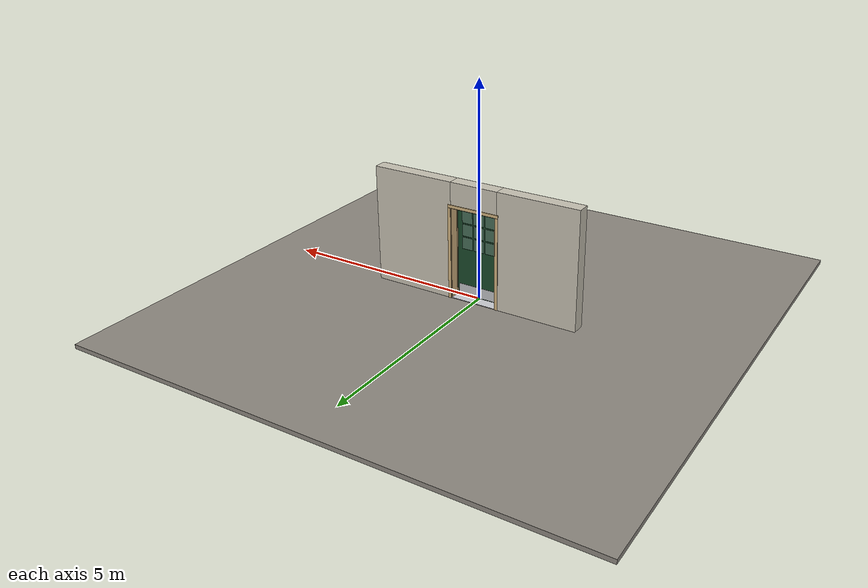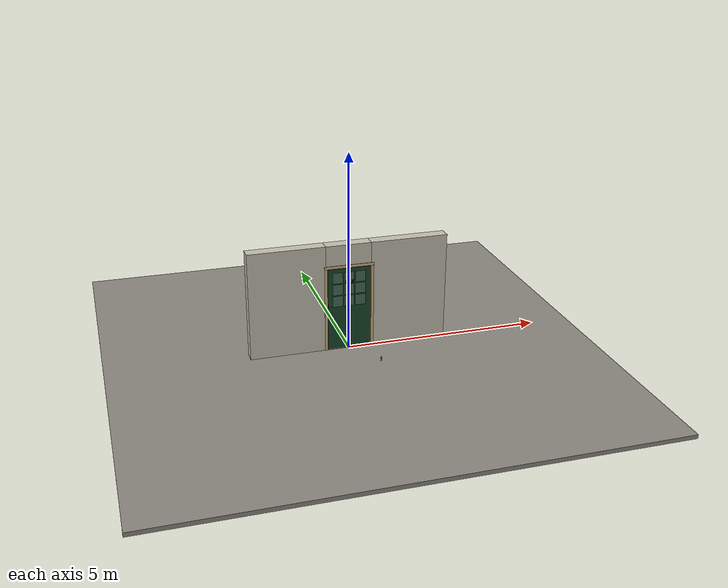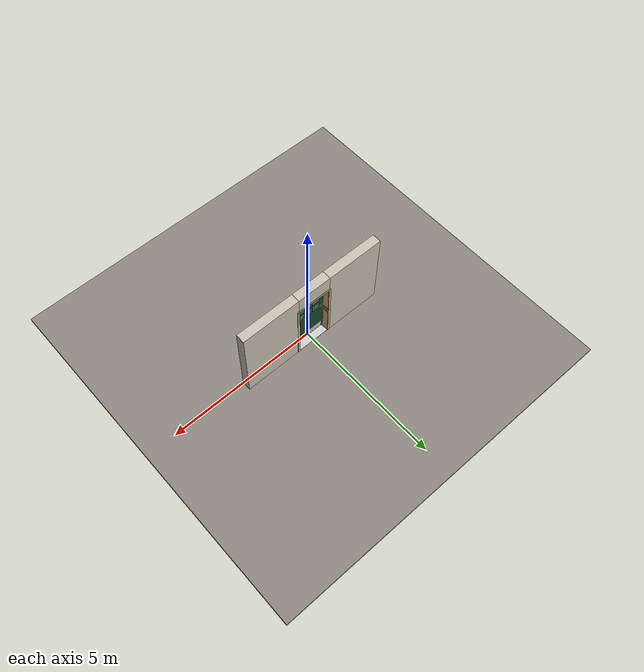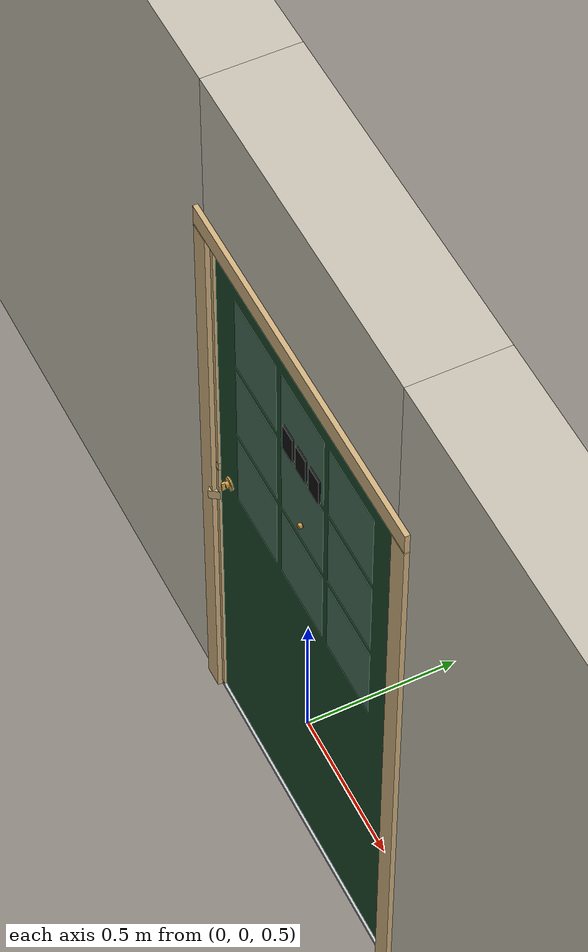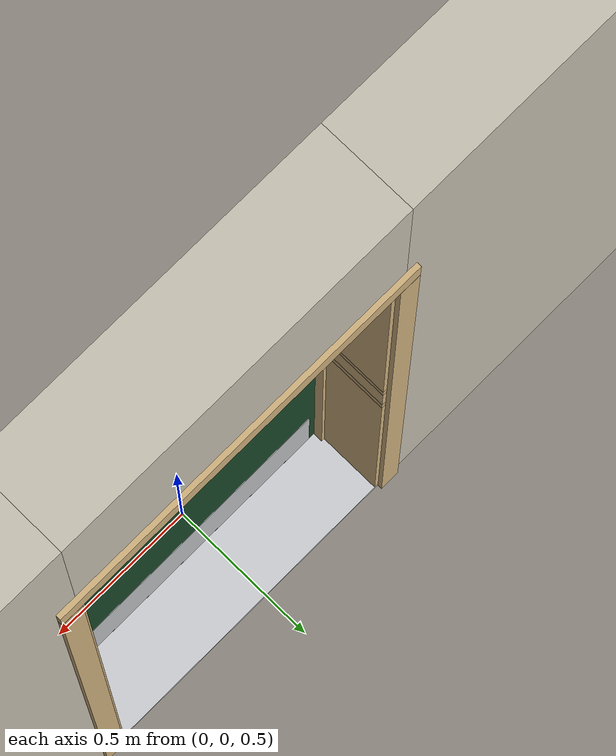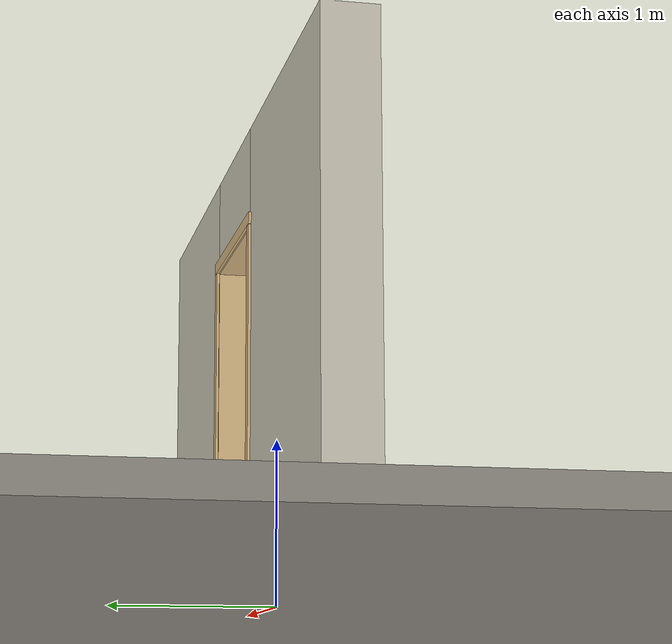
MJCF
<?xml version="1.0" ?>
<mujoco model="db0561_swing_single_full">
  <compiler angle="radian" meshdir="../../hardware" texturedir="../../textures" autolimits="true" inertiafromgeom="false"/>
  <option timestep="0.002" integrator="implicitfast" cone="elliptic" impratio="10" noslip_iterations="3">
    <flag multiccd="enable"/>
  </option>
  <size memory="16M"/>
  <default>
    <geom condim="4" solref="0.005 1" solimp="0.95 0.99 0.001"/>
    <joint solreflimit="0.005 1" solimplimit="0.95 0.99 0.001"/>
    <tendon solreflimit="0.005 1"/>
    <equality solref="0.002 1"/>
  </default>
  <visual>
    <headlight ambient="0.4 0.4 0.4" diffuse="0.7 0.7 0.7" specular="0.2 0.2 0.2"/>
    <quality shadowsize="4096"/>
    <map znear="0.01" zfar="60"/>
  </visual>
  <asset>
    <mesh name="hinge_e22b26c0c1" file="hinge_e22b26c0c1.obj"/>
    <mesh name="hinge_jamb_e1d088f8dc" file="hinge_jamb_e1d088f8dc.obj"/>
    <mesh name="house_numbers_ad0a8e8be0" file="house_numbers_ad0a8e8be0.obj"/>
    <mesh name="keypad_body_3b2d063948" file="keypad_body_3b2d063948.obj"/>
    <mesh name="peephole_f829311a59" file="peephole_f829311a59.obj"/>
    <mesh name="thumbturn_eb5c9899a3" file="thumbturn_eb5c9899a3.obj"/>
    <material name="mat_floor" rgba="0.55 0.53 0.5 1" specular="0.2" shininess="0.15" reflectance="0"/>
    <material name="mat_wall" rgba="0.78 0.76 0.7 1" specular="0.2" shininess="0.1" reflectance="0"/>
    <material name="mat_leaf" rgba="0.1 0.28 0.16 1" specular="0.23" shininess="0.47" reflectance="0.02"/>
    <material name="mat_glass" rgba="0.85 0.92 0.95 0.25" specular="0.2" shininess="0.95" reflectance="0.1"/>
    <material name="mat_hinge" rgba="0.65 0.66 0.68 1" specular="0.74" shininess="0.5" reflectance="0.36"/>
    <material name="mat_op_nickel_satin" rgba="0.72 0.7 0.66 1" specular="0.8" shininess="0.65" reflectance="0.4"/>
    <material name="mat_trim" rgba="0.85 0.66 0.3 1" specular="0.8" shininess="0.75" reflectance="0.4"/>
    <material name="mat_keypad" rgba="0.05 0.05 0.05 1" specular="0.38" shininess="0.3" reflectance="0.12"/>
    <material name="mat_key" rgba="0.85 0.85 0.82 1" specular="0.2" shininess="0.5" reflectance="0"/>
    <material name="mat_bolt" rgba="0.85 0.66 0.3 1" specular="0.8" shininess="0.75" reflectance="0.4"/>
    <material name="mat_deadbolt" rgba="0.85 0.66 0.3 1" specular="0.8" shininess="0.75" reflectance="0.4"/>
    <material name="mat_frame" rgba="0.82 0.7 0.5 1" specular="0.2" shininess="0.45" reflectance="0"/>
    <material name="mat_seal" rgba="0.1 0.1 0.1 1" specular="0.2" shininess="0.1" reflectance="0"/>
    <material name="mat_threshold" rgba="0.8 0.81 0.83 1" specular="0.8" shininess="0.6" reflectance="0.4"/>
    <material name="mat_kick" rgba="0.75 0.76 0.77 1" specular="0.8" shininess="0.65" reflectance="0.4"/>
    <material name="mat_peephole" rgba="0.85 0.66 0.3 1" specular="0.8" shininess="0.75" reflectance="0.4"/>
    <material name="mat_numbers" rgba="0.05 0.05 0.05 1" specular="0.38" shininess="0.3" reflectance="0.12"/>
    <material name="mat_transom" rgba="0.85 0.92 0.95 0.25" specular="0.2" shininess="0.95" reflectance="0.1"/>
    <material name="mat_bumper_stop" rgba="0.08 0.08 0.08 1" specular="0.2" shininess="0.1" reflectance="0"/>
    <material name="mat_stop_base" rgba="0.9 0.9 0.92 1" specular="0.8" shininess="0.9" reflectance="0.4"/>
    <texture name="skybox" type="skybox" builtin="gradient" rgb1="0.6 0.7 0.85" rgb2="0.9 0.92 0.95" width="256" height="256"/>
  </asset>
  <worldbody>
    <light name="sun" pos="1.5 -2.5 4" dir="-0.3 0.5 -0.8" directional="true" diffuse="0.8 0.8 0.8" specular="0.3 0.3 0.3" castshadow="true"/>
    <light name="fill" pos="-1.5 2.5 3" dir="0.3 -0.5 -0.7" directional="true" diffuse="0.35 0.35 0.4" castshadow="false"/>
    <camera name="robot_view" pos="0 -2.516812 1.812087" xyaxes="1 0 0 0 0.26963 0.962964" fovy="52"/>
    <camera name="far_view" pos="0 2.758812 1.812087" xyaxes="-1 0 0 0 -0.26963 0.962964" fovy="52"/>
    <camera name="iso" pos="-2.004737 -2.094762 2.234138" xyaxes="0.741536 -0.670913 0 0.242917 0.268487 0.932151" fovy="46"/>
    <camera name="detail_handle" pos="-0.25 -0.679 1.296" xyaxes="0.97561 0.219512 0 -0.070934 0.315262 0.94635" fovy="38"/>
    <geom name="floor" type="box" size="6 6 0.05" pos="0 0 -0.05" material="mat_floor" group="0" contype="1" conaffinity="1" friction="0.8 0.005 0.0001" density="2400"/>
    <geom name="wall_left" type="box" size="0.957 0.15 1.3735" pos="-1.543 0.121 1.3735" material="mat_wall" group="0" contype="1" conaffinity="1" friction="0.6 0.005 0.0001" density="800"/>
    <geom name="wall_right" type="box" size="0.972 0.15 1.3735" pos="1.528 0.121 1.3735" material="mat_wall" group="0" contype="1" conaffinity="1" friction="0.6 0.005 0.0001" density="800"/>
    <geom name="wall_header" type="box" size="0.571 0.15 0.2755" pos="-0.015 0.121 2.4715" material="mat_wall" group="0" contype="1" conaffinity="1" friction="0.6 0.005 0.0001" density="800"/>
    <geom name="hinge_0_jamb" type="mesh" mesh="hinge_jamb_e1d088f8dc" pos="0.534 -0.029 0.267" quat="0 0 1 0" material="mat_hinge" group="1" contype="0" conaffinity="0" density="7850"/>
    <geom name="hinge_1_jamb" type="mesh" mesh="hinge_jamb_e1d088f8dc" pos="0.534 -0.029 1.08" quat="0 0 1 0" material="mat_hinge" group="1" contype="0" conaffinity="0" density="7850"/>
    <geom name="hinge_2_jamb" type="mesh" mesh="hinge_jamb_e1d088f8dc" pos="0.534 -0.029 1.963" quat="0 0 1 0" material="mat_hinge" group="1" contype="0" conaffinity="0" density="7850"/>
    <geom name="leaf_deadbolt_strike_b" type="box" size="0.0155 0.003 0.0005" pos="-0.5365 0 1.1375" quat="0.5 0.5 0.5 0.5" material="mat_deadbolt" group="1" contype="0" conaffinity="0" density="7800"/>
    <geom name="leaf_deadbolt_strike_l" type="box" size="0.003 0.0155 0.0005" pos="-0.5365 -0.0125 1.156" quat="0.5 0.5 0.5 0.5" material="mat_deadbolt" group="1" contype="0" conaffinity="0" density="7800"/>
    <geom name="leaf_deadbolt_strike_t" type="box" size="0.0155 0.003 0.0005" pos="-0.5365 0 1.1745" quat="0.5 0.5 0.5 0.5" material="mat_deadbolt" group="1" contype="0" conaffinity="0" density="7800"/>
    <geom name="leaf_deadbolt_strike_r" type="box" size="0.003 0.0155 0.0005" pos="-0.5365 0.0125 1.156" quat="0.5 0.5 0.5 0.5" material="mat_deadbolt" group="1" contype="0" conaffinity="0" density="7800"/>
    <geom name="jamb_hinge" type="box" size="0.0095 0.15 1.0735" pos="0.5465 0.121 1.0735" material="mat_frame" group="0" contype="1" conaffinity="1" friction="0.6 0.005 0.0001" density="400"/>
    <geom name="strike_1016_wall_n" type="box" size="0.0245 0.13075 0.0183" pos="-0.5615 0.14025 1.016" material="mat_frame" group="0" contype="1" conaffinity="1" friction="0.6 0.005 0.0001" density="400"/>
    <geom name="strike_1016_wall_p" type="box" size="0.0245 0.008 0.0183" pos="-0.5615 -0.0175 1.016" material="mat_frame" group="0" contype="1" conaffinity="1" friction="0.6 0.005 0.0001" density="400"/>
    <geom name="strike_1016_ramp" type="box" size="0.0245 0.018028 0.0183" pos="-0.567385 -0.02691 1.016" quat="0.957092 0 0 -0.289784" material="mat_frame" group="0" contype="1" conaffinity="1" friction="0.12 0.005 0.0001" density="400"/>
    <geom name="strike_1016_back" type="box" size="0.013 0.0095 0.0183" pos="-0.573 0 1.016" material="mat_frame" group="0" contype="1" conaffinity="1" friction="0.6 0.005 0.0001" density="400"/>
    <geom name="strike_1156_wall_n" type="box" size="0.0245 0.13075 0.0155" pos="-0.5615 0.14025 1.156" material="mat_frame" group="0" contype="1" conaffinity="1" friction="0.6 0.005 0.0001" density="400"/>
    <geom name="strike_1156_wall_p" type="box" size="0.0245 0.00975 0.0155" pos="-0.5615 -0.01925 1.156" material="mat_frame" group="0" contype="1" conaffinity="1" friction="0.6 0.005 0.0001" density="400"/>
    <geom name="strike_1156_back" type="box" size="0.0098 0.0095 0.0155" pos="-0.5762 0 1.156" material="mat_frame" group="0" contype="1" conaffinity="1" friction="0.6 0.005 0.0001" density="400"/>
    <geom name="jamb_strike_0" type="box" size="0.0245 0.15 0.49885" pos="-0.5615 0.121 0.49885" material="mat_frame" group="0" contype="1" conaffinity="1" friction="0.6 0.005 0.0001" density="400"/>
    <geom name="jamb_strike_1" type="box" size="0.0245 0.15 0.0531" pos="-0.5615 0.121 1.0874" material="mat_frame" group="0" contype="1" conaffinity="1" friction="0.6 0.005 0.0001" density="400"/>
    <geom name="jamb_strike_2" type="box" size="0.0245 0.15 0.48775" pos="-0.5615 0.121 1.65925" material="mat_frame" group="0" contype="1" conaffinity="1" friction="0.6 0.005 0.0001" density="400"/>
    <geom name="jamb_head" type="box" size="0.571 0.15 0.0095" pos="-0.015 0.121 2.1565" material="mat_frame" group="0" contype="1" conaffinity="1" friction="0.6 0.005 0.0001" density="400"/>
    <geom name="head_stud" type="box" size="0.571 0.15 0.015" pos="-0.015 0.121 2.181" material="mat_wall" group="0" contype="1" conaffinity="1" friction="0.6 0.005 0.0001" density="500"/>
    <geom name="stop_hinge" type="box" size="0.0055 0.016 1.0735" pos="0.5315 0.0385 1.0735" material="mat_frame" group="0" contype="1" conaffinity="1" friction="0.6 0.005 0.0001" density="400"/>
    <geom name="stop_strike" type="box" size="0.0055 0.016 1.0735" pos="-0.5315 0.0385 1.0735" material="mat_frame" group="0" contype="1" conaffinity="1" friction="0.6 0.005 0.0001" density="400"/>
    <geom name="stop_head" type="box" size="0.537 0.016 0.0055" pos="0 0.0385 2.1415" material="mat_frame" group="0" contype="1" conaffinity="1" friction="0.6 0.005 0.0001" density="400"/>
    <geom name="seal_hinge" type="box" size="0.004 0.002 1.0735" pos="0.534 0.024 1.0735" material="mat_seal" group="1" contype="0" conaffinity="0" density="1100"/>
    <geom name="seal_strike" type="box" size="0.004 0.002 1.0735" pos="-0.534 0.024 1.0735" material="mat_seal" group="1" contype="0" conaffinity="0" density="1100"/>
    <geom name="seal_head" type="box" size="0.517 0.002 0.008" pos="0 0.024 2.135" material="mat_seal" group="1" contype="0" conaffinity="0" density="1100"/>
    <geom name="casing_l_n" type="box" size="0.035 0.008 1.083" pos="-0.586 -0.037 1.0735" material="mat_frame" group="2" contype="0" conaffinity="0" density="400"/>
    <geom name="casing_r_n" type="box" size="0.035 0.008 1.083" pos="0.586 -0.037 1.0735" material="mat_frame" group="2" contype="0" conaffinity="0" density="400"/>
    <geom name="casing_h_n" type="box" size="0.621 0.008 0.035" pos="0 -0.037 2.196" material="mat_frame" group="2" contype="0" conaffinity="0" density="400"/>
    <geom name="casing_l_p" type="box" size="0.035 0.008 1.083" pos="-0.586 0.279 1.0735" material="mat_frame" group="2" contype="0" conaffinity="0" density="400"/>
    <geom name="casing_r_p" type="box" size="0.035 0.008 1.083" pos="0.586 0.279 1.0735" material="mat_frame" group="2" contype="0" conaffinity="0" density="400"/>
    <geom name="casing_h_p" type="box" size="0.621 0.008 0.035" pos="0 0.279 2.196" material="mat_frame" group="2" contype="0" conaffinity="0" density="400"/>
    <geom name="threshold" type="box" size="0.556 0.15 0.0065" pos="0 0.121 0.0065" material="mat_threshold" group="0" contype="1" conaffinity="1" friction="0.5 0.005 0.0001" density="2700"/>
    <geom name="transom_glass" type="box" size="0.537 0.003 0.18" pos="0 0 2.397" material="mat_transom" group="0" contype="1" conaffinity="1" friction="0.6 0.005 0.0001" density="2500"/>
    <geom name="door_stop_base" type="cylinder" size="0.022 0.003" pos="0.55 -0.93595 0.003" material="mat_stop_base" group="0" contype="1" conaffinity="1" friction="0.6 0.005 0.0001" density="7850"/>
    <geom name="door_stop_post" type="cylinder" size="0.012 0.0255" pos="0.55 -0.93595 0.0315" material="mat_stop_base" group="0" contype="1" conaffinity="1" friction="0.6 0.005 0.0001" density="7850"/>
    <geom name="door_stop_bumper" type="cylinder" size="0.022 0.02" pos="0.55 -0.93595 0.077" material="mat_bumper_stop" group="0" contype="1" conaffinity="1" friction="0.6 0.005 0.0001" density="1100"/>
    <site name="approach_point" pos="0 -1.5 0" quat="1 0 0 0" size="0.05" rgba="0.2 0.9 0.2 0.5" group="4"/>
    <site name="goal_point" pos="0 1.5 0" quat="1 0 0 0" size="0.05" rgba="0.2 0.9 0.2 0.5" group="4"/>
    <site name="door_plane_center" pos="0 0 1.0735" quat="1 0 0 0" size="0.02" rgba="0.2 0.9 0.2 0.5" group="4"/>
    <body name="leaf" pos="0.537 0 0">
      <inertial pos="-0.529746 0.002691 0.971568" mass="35.098375" quat="0.50218 -0.496776 0.500406 0.500623" diaginertia="3.536288869 14.812796982 18.334343288"/>
      <joint name="leaf_hinge" type="hinge" axis="0 0 1" pos="-0.003 -0.029 0" limited="true" range="0 1.570796" solreflimit="0.02 1" damping="0.54954" frictionloss="1.645251" armature="0.02"/>
      <geom name="leaf_slab" type="box" size="0.5335 0.022 1.063" pos="-0.5365 0 1.08" material="mat_leaf" group="0" contype="1" conaffinity="1" friction="0.4 0.005 0.0001" density="1"/>
      <geom name="leaf_glass_0" type="box" size="0.12871 0.0228 0.13882" pos="-0.24908 0 1.2826" material="mat_glass" group="1" contype="0" conaffinity="0" density="1"/>
      <geom name="leaf_glass_1" type="box" size="0.12871 0.0228 0.13882" pos="-0.5365 0 1.2826" material="mat_glass" group="1" contype="0" conaffinity="0" density="1"/>
      <geom name="leaf_glass_2" type="box" size="0.12871 0.0228 0.13882" pos="-0.82392 0 1.2826" material="mat_glass" group="1" contype="0" conaffinity="0" density="1"/>
      <geom name="leaf_glass_3" type="box" size="0.12871 0.0228 0.13882" pos="-0.24908 0 1.59024" material="mat_glass" group="1" contype="0" conaffinity="0" density="1"/>
      <geom name="leaf_glass_4" type="box" size="0.12871 0.0228 0.13882" pos="-0.5365 0 1.59024" material="mat_glass" group="1" contype="0" conaffinity="0" density="1"/>
      <geom name="leaf_glass_5" type="box" size="0.12871 0.0228 0.13882" pos="-0.82392 0 1.59024" material="mat_glass" group="1" contype="0" conaffinity="0" density="1"/>
      <geom name="leaf_glass_6" type="box" size="0.12871 0.0228 0.13882" pos="-0.24908 0 1.89788" material="mat_glass" group="1" contype="0" conaffinity="0" density="1"/>
      <geom name="leaf_glass_7" type="box" size="0.12871 0.0228 0.13882" pos="-0.5365 0 1.89788" material="mat_glass" group="1" contype="0" conaffinity="0" density="1"/>
      <geom name="leaf_glass_8" type="box" size="0.12871 0.0228 0.13882" pos="-0.82392 0 1.89788" material="mat_glass" group="1" contype="0" conaffinity="0" density="1"/>
      <geom name="hinge_0" type="mesh" mesh="hinge_e22b26c0c1" pos="-0.003 -0.029 0.267" quat="0 0 1 0" material="mat_hinge" group="1" contype="0" conaffinity="0" density="7850"/>
      <geom name="hinge_1" type="mesh" mesh="hinge_e22b26c0c1" pos="-0.003 -0.029 1.08" quat="0 0 1 0" material="mat_hinge" group="1" contype="0" conaffinity="0" density="7850"/>
      <geom name="hinge_2" type="mesh" mesh="hinge_e22b26c0c1" pos="-0.003 -0.029 1.963" quat="0 0 1 0" material="mat_hinge" group="1" contype="0" conaffinity="0" density="7850"/>
      <geom name="leaf_keypad_body" type="mesh" mesh="keypad_body_3b2d063948" pos="-1 0.022 1.136" quat="0 0 0.707107 0.707107" material="mat_keypad" group="0" contype="1" conaffinity="1" friction="0.6 0.005 0.0001" density="2000"/>
      <geom name="leaf_latch_bolt_faceplate" type="box" size="0.0006 0.014 0.0283" pos="-1.0694 0 1.016" material="mat_bolt" group="1" contype="0" conaffinity="0" density="8500"/>
      <geom name="leaf_deadbolt_faceplate" type="box" size="0.0006 0.014 0.0245" pos="-1.0694 0 1.156" material="mat_deadbolt" group="1" contype="0" conaffinity="0" density="8500"/>
      <geom name="kick_plate_p" type="box" size="0.5035 0.0008 0.125" pos="-0.5365 0.0228 0.152" material="mat_kick" group="2" contype="0" conaffinity="0" density="7900"/>
      <geom name="peephole" type="mesh" mesh="peephole_f829311a59" pos="-0.5365 -0.022 1.517" quat="0 0 -0.707107 0.707107" material="mat_peephole" group="2" contype="0" conaffinity="0" density="8500"/>
      <geom name="house_numbers" type="mesh" mesh="house_numbers_ad0a8e8be0" pos="-0.5365 -0.022 1.793" quat="0 0 -0.707107 0.707107" material="mat_numbers" group="2" contype="0" conaffinity="0" density="1000"/>
      <site name="leaf_edge_mid" pos="-1.07 0 1.063" quat="1 0 0 0" size="0.02" rgba="0.2 0.9 0.2 0.5" group="4"/>
      <body name="leaf_handle" pos="-1 0 1.016">
        <inertial pos="0 0 0" mass="0.037288" quat="0.5 0.5 0.5 0.5" diaginertia="0.000000671 0.000005817 0.000005817"/>
        <joint name="leaf_handle_hinge" type="hinge" axis="0 1 0" limited="true" range="0 0.87" damping="0.141426" frictionloss="0.048" stiffness="0.5" springref="-0.5" armature="0.01"/>
        <geom name="leaf_handle_spindle" type="cylinder" size="0.006 0.021" pos="0 0 0" quat="0.707107 -0.707107 0 0" material="mat_op_nickel_satin" group="1" contype="0" conaffinity="0" density="7850"/>
      </body>
      <body name="leaf_keypad_key_1" pos="-0.987 0.042 1.184">
        <inertial pos="0 0.0015 0" mass="0.001008" quat="0 0 0.707107 0.707107" diaginertia="0.000000017 0.000000034 0.00000005"/>
        <joint name="leaf_keypad_key_1_slide" type="slide" axis="0 -1 0" limited="true" range="0 0.0015" damping="14" frictionloss="0.05" stiffness="1000" springref="-0.0015" armature="0.1"/>
        <geom name="leaf_keypad_key_1_geom" type="box" size="0.01 0.0015 0.007" pos="0 0.0015 0" material="mat_key" group="0" contype="1" conaffinity="1" friction="0.6 0.005 0.0001" density="1200"/>
        <site name="leaf_keypad_key_1_press" pos="0 0.005 0" quat="1 0 0 0" size="0.008" rgba="0.2 0.9 0.2 0.5" group="4"/>
      </body>
      <body name="leaf_keypad_key_2" pos="-1.013 0.042 1.184">
        <inertial pos="0 0.0015 0" mass="0.001008" quat="0 0 0.707107 0.707107" diaginertia="0.000000017 0.000000034 0.00000005"/>
        <joint name="leaf_keypad_key_2_slide" type="slide" axis="0 -1 0" limited="true" range="0 0.0015" damping="14" frictionloss="0.05" stiffness="1000" springref="-0.0015" armature="0.1"/>
        <geom name="leaf_keypad_key_2_geom" type="box" size="0.01 0.0015 0.007" pos="0 0.0015 0" material="mat_key" group="0" contype="1" conaffinity="1" friction="0.6 0.005 0.0001" density="1200"/>
        <site name="leaf_keypad_key_2_press" pos="0 0.005 0" quat="1 0 0 0" size="0.008" rgba="0.2 0.9 0.2 0.5" group="4"/>
      </body>
      <body name="leaf_keypad_key_3" pos="-0.987 0.042 1.16">
        <inertial pos="0 0.0015 0" mass="0.001008" quat="0 0 0.707107 0.707107" diaginertia="0.000000017 0.000000034 0.00000005"/>
        <joint name="leaf_keypad_key_3_slide" type="slide" axis="0 -1 0" limited="true" range="0 0.0015" damping="14" frictionloss="0.05" stiffness="1000" springref="-0.0015" armature="0.1"/>
        <geom name="leaf_keypad_key_3_geom" type="box" size="0.01 0.0015 0.007" pos="0 0.0015 0" material="mat_key" group="0" contype="1" conaffinity="1" friction="0.6 0.005 0.0001" density="1200"/>
        <site name="leaf_keypad_key_3_press" pos="0 0.005 0" quat="1 0 0 0" size="0.008" rgba="0.2 0.9 0.2 0.5" group="4"/>
      </body>
      <body name="leaf_keypad_key_4" pos="-1.013 0.042 1.16">
        <inertial pos="0 0.0015 0" mass="0.001008" quat="0 0 0.707107 0.707107" diaginertia="0.000000017 0.000000034 0.00000005"/>
        <joint name="leaf_keypad_key_4_slide" type="slide" axis="0 -1 0" limited="true" range="0 0.0015" damping="14" frictionloss="0.05" stiffness="1000" springref="-0.0015" armature="0.1"/>
        <geom name="leaf_keypad_key_4_geom" type="box" size="0.01 0.0015 0.007" pos="0 0.0015 0" material="mat_key" group="0" contype="1" conaffinity="1" friction="0.6 0.005 0.0001" density="1200"/>
        <site name="leaf_keypad_key_4_press" pos="0 0.005 0" quat="1 0 0 0" size="0.008" rgba="0.2 0.9 0.2 0.5" group="4"/>
      </body>
      <body name="leaf_keypad_key_5" pos="-0.987 0.042 1.136">
        <inertial pos="0 0.0015 0" mass="0.001008" quat="0 0 0.707107 0.707107" diaginertia="0.000000017 0.000000034 0.00000005"/>
        <joint name="leaf_keypad_key_5_slide" type="slide" axis="0 -1 0" limited="true" range="0 0.0015" damping="14" frictionloss="0.05" stiffness="1000" springref="-0.0015" armature="0.1"/>
        <geom name="leaf_keypad_key_5_geom" type="box" size="0.01 0.0015 0.007" pos="0 0.0015 0" material="mat_key" group="0" contype="1" conaffinity="1" friction="0.6 0.005 0.0001" density="1200"/>
        <site name="leaf_keypad_key_5_press" pos="0 0.005 0" quat="1 0 0 0" size="0.008" rgba="0.2 0.9 0.2 0.5" group="4"/>
      </body>
      <body name="leaf_keypad_key_6" pos="-1.013 0.042 1.136">
        <inertial pos="0 0.0015 0" mass="0.001008" quat="0 0 0.707107 0.707107" diaginertia="0.000000017 0.000000034 0.00000005"/>
        <joint name="leaf_keypad_key_6_slide" type="slide" axis="0 -1 0" limited="true" range="0 0.0015" damping="14" frictionloss="0.05" stiffness="1000" springref="-0.0015" armature="0.1"/>
        <geom name="leaf_keypad_key_6_geom" type="box" size="0.01 0.0015 0.007" pos="0 0.0015 0" material="mat_key" group="0" contype="1" conaffinity="1" friction="0.6 0.005 0.0001" density="1200"/>
        <site name="leaf_keypad_key_6_press" pos="0 0.005 0" quat="1 0 0 0" size="0.008" rgba="0.2 0.9 0.2 0.5" group="4"/>
      </body>
      <body name="leaf_keypad_key_7" pos="-0.987 0.042 1.112">
        <inertial pos="0 0.0015 0" mass="0.001008" quat="0 0 0.707107 0.707107" diaginertia="0.000000017 0.000000034 0.00000005"/>
        <joint name="leaf_keypad_key_7_slide" type="slide" axis="0 -1 0" limited="true" range="0 0.0015" damping="14" frictionloss="0.05" stiffness="1000" springref="-0.0015" armature="0.1"/>
        <geom name="leaf_keypad_key_7_geom" type="box" size="0.01 0.0015 0.007" pos="0 0.0015 0" material="mat_key" group="0" contype="1" conaffinity="1" friction="0.6 0.005 0.0001" density="1200"/>
        <site name="leaf_keypad_key_7_press" pos="0 0.005 0" quat="1 0 0 0" size="0.008" rgba="0.2 0.9 0.2 0.5" group="4"/>
      </body>
      <body name="leaf_keypad_key_8" pos="-1.013 0.042 1.112">
        <inertial pos="0 0.0015 0" mass="0.001008" quat="0 0 0.707107 0.707107" diaginertia="0.000000017 0.000000034 0.00000005"/>
        <joint name="leaf_keypad_key_8_slide" type="slide" axis="0 -1 0" limited="true" range="0 0.0015" damping="14" frictionloss="0.05" stiffness="1000" springref="-0.0015" armature="0.1"/>
        <geom name="leaf_keypad_key_8_geom" type="box" size="0.01 0.0015 0.007" pos="0 0.0015 0" material="mat_key" group="0" contype="1" conaffinity="1" friction="0.6 0.005 0.0001" density="1200"/>
        <site name="leaf_keypad_key_8_press" pos="0 0.005 0" quat="1 0 0 0" size="0.008" rgba="0.2 0.9 0.2 0.5" group="4"/>
      </body>
      <body name="leaf_keypad_key_9" pos="-0.987 0.042 1.088">
        <inertial pos="0 0.0015 0" mass="0.001008" quat="0 0 0.707107 0.707107" diaginertia="0.000000017 0.000000034 0.00000005"/>
        <joint name="leaf_keypad_key_9_slide" type="slide" axis="0 -1 0" limited="true" range="0 0.0015" damping="14" frictionloss="0.05" stiffness="1000" springref="-0.0015" armature="0.1"/>
        <geom name="leaf_keypad_key_9_geom" type="box" size="0.01 0.0015 0.007" pos="0 0.0015 0" material="mat_key" group="0" contype="1" conaffinity="1" friction="0.6 0.005 0.0001" density="1200"/>
        <site name="leaf_keypad_key_9_press" pos="0 0.005 0" quat="1 0 0 0" size="0.008" rgba="0.2 0.9 0.2 0.5" group="4"/>
      </body>
      <body name="leaf_keypad_key_0" pos="-1.013 0.042 1.088">
        <inertial pos="0 0.0015 0" mass="0.001008" quat="0 0 0.707107 0.707107" diaginertia="0.000000017 0.000000034 0.00000005"/>
        <joint name="leaf_keypad_key_0_slide" type="slide" axis="0 -1 0" limited="true" range="0 0.0015" damping="14" frictionloss="0.05" stiffness="1000" springref="-0.0015" armature="0.1"/>
        <geom name="leaf_keypad_key_0_geom" type="box" size="0.01 0.0015 0.007" pos="0 0.0015 0" material="mat_key" group="0" contype="1" conaffinity="1" friction="0.6 0.005 0.0001" density="1200"/>
        <site name="leaf_keypad_key_0_press" pos="0 0.005 0" quat="1 0 0 0" size="0.008" rgba="0.2 0.9 0.2 0.5" group="4"/>
      </body>
      <body name="leaf_latch_bolt" pos="-1.07 0 1.016">
        <inertial pos="0.0055 0 0" mass="0.074627" quat="0.92388 0.382683 0 0" diaginertia="0.000002271 0.000013255 0.000013255"/>
        <joint name="leaf_latch_bolt_slide" type="slide" axis="1 0 0" limited="true" range="0 0.019" damping="2" frictionloss="0.3" stiffness="600" springref="-0.01" armature="0.1"/>
        <geom name="leaf_latch_bolt_capsule" type="capsule" size="0.008 0.0165" pos="0.0055 0 0" quat="0.707107 0 -0.707107 0" material="mat_bolt" group="0" contype="1" conaffinity="1" friction="0.2 0.005 0.0001" density="8500"/>
      </body>
      <body name="leaf_deadbolt" pos="-1.07 0 1.156">
        <inertial pos="0.0023 0 0" mass="0.18836" quat="0 0 0.707107 0.707107" diaginertia="0.000013829 0.000052194 0.000057986"/>
        <joint name="leaf_deadbolt_slide" type="slide" axis="1 0 0" limited="true" range="0 0.0254" damping="5" frictionloss="1.5" armature="0.1"/>
        <geom name="leaf_deadbolt_box" type="box" size="0.0277 0.008 0.0125" pos="0.0023 0 0" material="mat_deadbolt" group="0" contype="1" conaffinity="1" friction="0.3 0.005 0.0001" density="8500"/>
      </body>
      <body name="leaf_deadbolt_thumbturn" pos="-1.005 -0.022 1.156">
        <inertial pos="0 -0.012928 0" mass="0.178946" quat="0.5 0.5 0.5 0.5" diaginertia="0.000026045 0.000026215 0.000032438"/>
        <joint name="leaf_deadbolt_thumbturn_hinge" type="hinge" axis="0 1 0" limited="true" range="0 1.5708" damping="0.05" frictionloss="0.3" armature="0.005"/>
        <geom name="leaf_deadbolt_thumbturn_mesh" type="mesh" mesh="thumbturn_eb5c9899a3" pos="0 0 0" quat="0 0 -0.707107 0.707107" material="mat_deadbolt" group="0" contype="1" conaffinity="1" friction="0.6 0.005 0.0001" density="7100"/>
        <geom name="leaf_deadbolt_thumbturn_col" type="box" size="0.006 0.012 0.016" pos="0 -0.02 0" material="mat_deadbolt" group="3" contype="1" conaffinity="1" rgba="0.8 0.3 0.3 0.25" friction="0.6 0.005 0.0001" density="7100"/>
      </body>
    </body>
  </worldbody>
  <tendon>
    <fixed name="leaf_latch_bolt_coupling" limited="true" range="0 10">
      <joint joint="leaf_latch_bolt_slide" coef="1"/>
      <joint joint="leaf_handle_hinge" coef="-0.023457"/>
    </fixed>
  </tendon>
  <equality>
    <joint name="leaf_deadbolt_couple" joint1="leaf_deadbolt_slide" joint2="leaf_deadbolt_thumbturn_hinge" polycoef="0 0.01617 0 0 0" active="true"/>
  </equality>
  <contact>
    <exclude body1="leaf_deadbolt" body2="leaf_deadbolt_thumbturn"/>
  </contact>
  <sensor>
    <jointpos name="leaf_hinge_pos" joint="leaf_hinge"/>
    <jointvel name="leaf_hinge_vel" joint="leaf_hinge"/>
    <jointpos name="leaf_handle_hinge_pos" joint="leaf_handle_hinge"/>
    <jointvel name="leaf_handle_hinge_vel" joint="leaf_handle_hinge"/>
    <jointpos name="leaf_keypad_key_1_slide_pos" joint="leaf_keypad_key_1_slide"/>
    <jointvel name="leaf_keypad_key_1_slide_vel" joint="leaf_keypad_key_1_slide"/>
    <jointpos name="leaf_keypad_key_2_slide_pos" joint="leaf_keypad_key_2_slide"/>
    <jointvel name="leaf_keypad_key_2_slide_vel" joint="leaf_keypad_key_2_slide"/>
    <jointpos name="leaf_keypad_key_3_slide_pos" joint="leaf_keypad_key_3_slide"/>
    <jointvel name="leaf_keypad_key_3_slide_vel" joint="leaf_keypad_key_3_slide"/>
    <jointpos name="leaf_keypad_key_4_slide_pos" joint="leaf_keypad_key_4_slide"/>
    <jointvel name="leaf_keypad_key_4_slide_vel" joint="leaf_keypad_key_4_slide"/>
    <jointpos name="leaf_keypad_key_5_slide_pos" joint="leaf_keypad_key_5_slide"/>
    <jointvel name="leaf_keypad_key_5_slide_vel" joint="leaf_keypad_key_5_slide"/>
    <jointpos name="leaf_keypad_key_6_slide_pos" joint="leaf_keypad_key_6_slide"/>
    <jointvel name="leaf_keypad_key_6_slide_vel" joint="leaf_keypad_key_6_slide"/>
    <jointpos name="leaf_keypad_key_7_slide_pos" joint="leaf_keypad_key_7_slide"/>
    <jointvel name="leaf_keypad_key_7_slide_vel" joint="leaf_keypad_key_7_slide"/>
    <jointpos name="leaf_keypad_key_8_slide_pos" joint="leaf_keypad_key_8_slide"/>
    <jointvel name="leaf_keypad_key_8_slide_vel" joint="leaf_keypad_key_8_slide"/>
    <jointpos name="leaf_keypad_key_9_slide_pos" joint="leaf_keypad_key_9_slide"/>
    <jointvel name="leaf_keypad_key_9_slide_vel" joint="leaf_keypad_key_9_slide"/>
    <jointpos name="leaf_keypad_key_0_slide_pos" joint="leaf_keypad_key_0_slide"/>
    <jointvel name="leaf_keypad_key_0_slide_vel" joint="leaf_keypad_key_0_slide"/>
    <jointpos name="leaf_latch_bolt_slide_pos" joint="leaf_latch_bolt_slide"/>
    <jointvel name="leaf_latch_bolt_slide_vel" joint="leaf_latch_bolt_slide"/>
    <jointpos name="leaf_deadbolt_slide_pos" joint="leaf_deadbolt_slide"/>
    <jointvel name="leaf_deadbolt_slide_vel" joint="leaf_deadbolt_slide"/>
    <jointpos name="leaf_deadbolt_thumbturn_hinge_pos" joint="leaf_deadbolt_thumbturn_hinge"/>
    <jointvel name="leaf_deadbolt_thumbturn_hinge_vel" joint="leaf_deadbolt_thumbturn_hinge"/>
  </sensor>
</mujoco>
